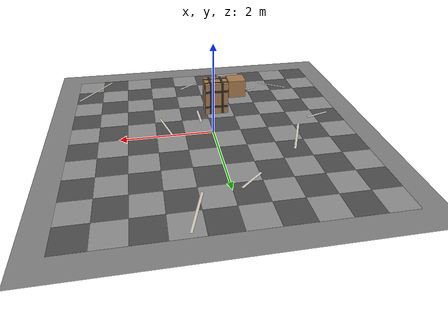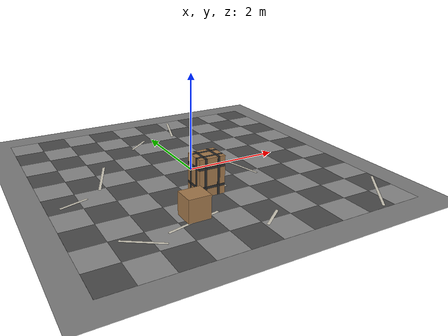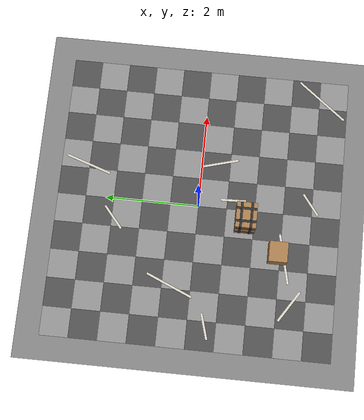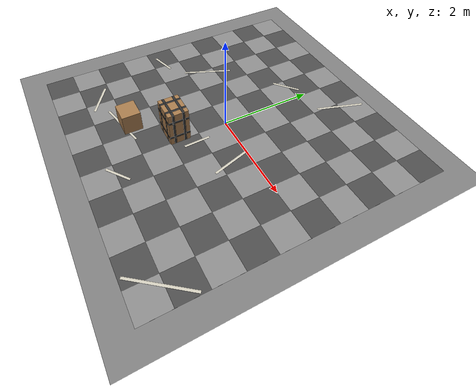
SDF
<sdf version="1.9">
 <world name="ecps295_lowbox_s19">
  <model name="ground_plane">
   <static>true</static>
   <link name="link">
    <collision name="collision">
     <geometry><plane><normal>0 0 1</normal><size>50 50</size></plane></geometry>
    </collision>
    <visual name="visual">
     <geometry><plane><normal>0 0 1</normal><size>50 50</size></plane></geometry>
     <material><ambient>0.5 0.5 0.5 1</ambient><diffuse>0.5 0.5 0.5 1</diffuse></material>
    </visual>
   </link>
  </model>
  <model name="eva_mat">
   <static>true</static>
   <link name="link">
    <visual name="t0_0">
     <pose>-2.745 -2.745 0.001 0 0 0</pose>
     <geometry><box><size>0.61 0.61 0.002</size></box></geometry>
     <material><ambient>0.3 0.3 0.3 1</ambient><diffuse>0.3 0.3 0.3 1</diffuse></material>
    </visual>
    <visual name="t0_1">
     <pose>-2.745 -2.135 0.001 0 0 0</pose>
     <geometry><box><size>0.61 0.61 0.002</size></box></geometry>
     <material><ambient>0.55 0.55 0.55 1</ambient><diffuse>0.55 0.55 0.55 1</diffuse></material>
    </visual>
    <visual name="t0_2">
     <pose>-2.745 -1.525 0.001 0 0 0</pose>
     <geometry><box><size>0.61 0.61 0.002</size></box></geometry>
     <material><ambient>0.3 0.3 0.3 1</ambient><diffuse>0.3 0.3 0.3 1</diffuse></material>
    </visual>
    <visual name="t0_3">
     <pose>-2.745 -0.915 0.001 0 0 0</pose>
     <geometry><box><size>0.61 0.61 0.002</size></box></geometry>
     <material><ambient>0.55 0.55 0.55 1</ambient><diffuse>0.55 0.55 0.55 1</diffuse></material>
    </visual>
    <visual name="t0_4">
     <pose>-2.745 -0.305 0.001 0 0 0</pose>
     <geometry><box><size>0.61 0.61 0.002</size></box></geometry>
     <material><ambient>0.3 0.3 0.3 1</ambient><diffuse>0.3 0.3 0.3 1</diffuse></material>
    </visual>
    <visual name="t0_5">
     <pose>-2.745 0.305 0.001 0 0 0</pose>
     <geometry><box><size>0.61 0.61 0.002</size></box></geometry>
     <material><ambient>0.55 0.55 0.55 1</ambient><diffuse>0.55 0.55 0.55 1</diffuse></material>
    </visual>
    <visual name="t0_6">
     <pose>-2.745 0.915 0.001 0 0 0</pose>
     <geometry><box><size>0.61 0.61 0.002</size></box></geometry>
     <material><ambient>0.3 0.3 0.3 1</ambient><diffuse>0.3 0.3 0.3 1</diffuse></material>
    </visual>
    <visual name="t0_7">
     <pose>-2.745 1.525 0.001 0 0 0</pose>
     <geometry><box><size>0.61 0.61 0.002</size></box></geometry>
     <material><ambient>0.55 0.55 0.55 1</ambient><diffuse>0.55 0.55 0.55 1</diffuse></material>
    </visual>
    <visual name="t0_8">
     <pose>-2.745 2.135 0.001 0 0 0</pose>
     <geometry><box><size>0.61 0.61 0.002</size></box></geometry>
     <material><ambient>0.3 0.3 0.3 1</ambient><diffuse>0.3 0.3 0.3 1</diffuse></material>
    </visual>
    <visual name="t0_9">
     <pose>-2.745 2.745 0.001 0 0 0</pose>
     <geometry><box><size>0.61 0.61 0.002</size></box></geometry>
     <material><ambient>0.55 0.55 0.55 1</ambient><diffuse>0.55 0.55 0.55 1</diffuse></material>
    </visual>
    <visual name="t1_0">
     <pose>-2.135 -2.745 0.001 0 0 0</pose>
     <geometry><box><size>0.61 0.61 0.002</size></box></geometry>
     <material><ambient>0.55 0.55 0.55 1</ambient><diffuse>0.55 0.55 0.55 1</diffuse></material>
    </visual>
    <visual name="t1_1">
     <pose>-2.135 -2.135 0.001 0 0 0</pose>
     <geometry><box><size>0.61 0.61 0.002</size></box></geometry>
     <material><ambient>0.3 0.3 0.3 1</ambient><diffuse>0.3 0.3 0.3 1</diffuse></material>
    </visual>
    <visual name="t1_2">
     <pose>-2.135 -1.525 0.001 0 0 0</pose>
     <geometry><box><size>0.61 0.61 0.002</size></box></geometry>
     <material><ambient>0.55 0.55 0.55 1</ambient><diffuse>0.55 0.55 0.55 1</diffuse></material>
    </visual>
    <visual name="t1_3">
     <pose>-2.135 -0.915 0.001 0 0 0</pose>
     <geometry><box><size>0.61 0.61 0.002</size></box></geometry>
     <material><ambient>0.3 0.3 0.3 1</ambient><diffuse>0.3 0.3 0.3 1</diffuse></material>
    </visual>
    <visual name="t1_4">
     <pose>-2.135 -0.305 0.001 0 0 0</pose>
     <geometry><box><size>0.61 0.61 0.002</size></box></geometry>
     <material><ambient>0.55 0.55 0.55 1</ambient><diffuse>0.55 0.55 0.55 1</diffuse></material>
    </visual>
    <visual name="t1_5">
     <pose>-2.135 0.305 0.001 0 0 0</pose>
     <geometry><box><size>0.61 0.61 0.002</size></box></geometry>
     <material><ambient>0.3 0.3 0.3 1</ambient><diffuse>0.3 0.3 0.3 1</diffuse></material>
    </visual>
    <visual name="t1_6">
     <pose>-2.135 0.915 0.001 0 0 0</pose>
     <geometry><box><size>0.61 0.61 0.002</size></box></geometry>
     <material><ambient>0.55 0.55 0.55 1</ambient><diffuse>0.55 0.55 0.55 1</diffuse></material>
    </visual>
    <visual name="t1_7">
     <pose>-2.135 1.525 0.001 0 0 0</pose>
     <geometry><box><size>0.61 0.61 0.002</size></box></geometry>
     <material><ambient>0.3 0.3 0.3 1</ambient><diffuse>0.3 0.3 0.3 1</diffuse></material>
    </visual>
    <visual name="t1_8">
     <pose>-2.135 2.135 0.001 0 0 0</pose>
     <geometry><box><size>0.61 0.61 0.002</size></box></geometry>
     <material><ambient>0.55 0.55 0.55 1</ambient><diffuse>0.55 0.55 0.55 1</diffuse></material>
    </visual>
    <visual name="t1_9">
     <pose>-2.135 2.745 0.001 0 0 0</pose>
     <geometry><box><size>0.61 0.61 0.002</size></box></geometry>
     <material><ambient>0.3 0.3 0.3 1</ambient><diffuse>0.3 0.3 0.3 1</diffuse></material>
    </visual>
    <visual name="t2_0">
     <pose>-1.525 -2.745 0.001 0 0 0</pose>
     <geometry><box><size>0.61 0.61 0.002</size></box></geometry>
     <material><ambient>0.3 0.3 0.3 1</ambient><diffuse>0.3 0.3 0.3 1</diffuse></material>
    </visual>
    <visual name="t2_1">
     <pose>-1.525 -2.135 0.001 0 0 0</pose>
     <geometry><box><size>0.61 0.61 0.002</size></box></geometry>
     <material><ambient>0.55 0.55 0.55 1</ambient><diffuse>0.55 0.55 0.55 1</diffuse></material>
    </visual>
    <visual name="t2_2">
     <pose>-1.525 -1.525 0.001 0 0 0</pose>
     <geometry><box><size>0.61 0.61 0.002</size></box></geometry>
     <material><ambient>0.3 0.3 0.3 1</ambient><diffuse>0.3 0.3 0.3 1</diffuse></material>
    </visual>
    <visual name="t2_3">
     <pose>-1.525 -0.915 0.001 0 0 0</pose>
     <geometry><box><size>0.61 0.61 0.002</size></box></geometry>
     <material><ambient>0.55 0.55 0.55 1</ambient><diffuse>0.55 0.55 0.55 1</diffuse></material>
    </visual>
    <visual name="t2_4">
     <pose>-1.525 -0.305 0.001 0 0 0</pose>
     <geometry><box><size>0.61 0.61 0.002</size></box></geometry>
     <material><ambient>0.3 0.3 0.3 1</ambient><diffuse>0.3 0.3 0.3 1</diffuse></material>
    </visual>
    <visual name="t2_5">
     <pose>-1.525 0.305 0.001 0 0 0</pose>
     <geometry><box><size>0.61 0.61 0.002</size></box></geometry>
     <material><ambient>0.55 0.55 0.55 1</ambient><diffuse>0.55 0.55 0.55 1</diffuse></material>
    </visual>
    <visual name="t2_6">
     <pose>-1.525 0.915 0.001 0 0 0</pose>
     <geometry><box><size>0.61 0.61 0.002</size></box></geometry>
     <material><ambient>0.3 0.3 0.3 1</ambient><diffuse>0.3 0.3 0.3 1</diffuse></material>
    </visual>
    <visual name="t2_7">
     <pose>-1.525 1.525 0.001 0 0 0</pose>
     <geometry><box><size>0.61 0.61 0.002</size></box></geometry>
     <material><ambient>0.55 0.55 0.55 1</ambient><diffuse>0.55 0.55 0.55 1</diffuse></material>
    </visual>
    <visual name="t2_8">
     <pose>-1.525 2.135 0.001 0 0 0</pose>
     <geometry><box><size>0.61 0.61 0.002</size></box></geometry>
     <material><ambient>0.3 0.3 0.3 1</ambient><diffuse>0.3 0.3 0.3 1</diffuse></material>
    </visual>
    <visual name="t2_9">
     <pose>-1.525 2.745 0.001 0 0 0</pose>
     <geometry><box><size>0.61 0.61 0.002</size></box></geometry>
     <material><ambient>0.55 0.55 0.55 1</ambient><diffuse>0.55 0.55 0.55 1</diffuse></material>
    </visual>
    <visual name="t3_0">
     <pose>-0.915 -2.745 0.001 0 0 0</pose>
     <geometry><box><size>0.61 0.61 0.002</size></box></geometry>
     <material><ambient>0.55 0.55 0.55 1</ambient><diffuse>0.55 0.55 0.55 1</diffuse></material>
    </visual>
    <visual name="t3_1">
     <pose>-0.915 -2.135 0.001 0 0 0</pose>
     <geometry><box><size>0.61 0.61 0.002</size></box></geometry>
     <material><ambient>0.3 0.3 0.3 1</ambient><diffuse>0.3 0.3 0.3 1</diffuse></material>
    </visual>
    <visual name="t3_2">
     <pose>-0.915 -1.525 0.001 0 0 0</pose>
     <geometry><box><size>0.61 0.61 0.002</size></box></geometry>
     <material><ambient>0.55 0.55 0.55 1</ambient><diffuse>0.55 0.55 0.55 1</diffuse></material>
    </visual>
    <visual name="t3_3">
     <pose>-0.915 -0.915 0.001 0 0 0</pose>
     <geometry><box><size>0.61 0.61 0.002</size></box></geometry>
     <material><ambient>0.3 0.3 0.3 1</ambient><diffuse>0.3 0.3 0.3 1</diffuse></material>
    </visual>
    <visual name="t3_4">
     <pose>-0.915 -0.305 0.001 0 0 0</pose>
     <geometry><box><size>0.61 0.61 0.002</size></box></geometry>
     <material><ambient>0.55 0.55 0.55 1</ambient><diffuse>0.55 0.55 0.55 1</diffuse></material>
    </visual>
    <visual name="t3_5">
     <pose>-0.915 0.305 0.001 0 0 0</pose>
     <geometry><box><size>0.61 0.61 0.002</size></box></geometry>
     <material><ambient>0.3 0.3 0.3 1</ambient><diffuse>0.3 0.3 0.3 1</diffuse></material>
    </visual>
    <visual name="t3_6">
     <pose>-0.915 0.915 0.001 0 0 0</pose>
     <geometry><box><size>0.61 0.61 0.002</size></box></geometry>
     <material><ambient>0.55 0.55 0.55 1</ambient><diffuse>0.55 0.55 0.55 1</diffuse></material>
    </visual>
    <visual name="t3_7">
     <pose>-0.915 1.525 0.001 0 0 0</pose>
     <geometry><box><size>0.61 0.61 0.002</size></box></geometry>
     <material><ambient>0.3 0.3 0.3 1</ambient><diffuse>0.3 0.3 0.3 1</diffuse></material>
    </visual>
    <visual name="t3_8">
     <pose>-0.915 2.135 0.001 0 0 0</pose>
     <geometry><box><size>0.61 0.61 0.002</size></box></geometry>
     <material><ambient>0.55 0.55 0.55 1</ambient><diffuse>0.55 0.55 0.55 1</diffuse></material>
    </visual>
    <visual name="t3_9">
     <pose>-0.915 2.745 0.001 0 0 0</pose>
     <geometry><box><size>0.61 0.61 0.002</size></box></geometry>
     <material><ambient>0.3 0.3 0.3 1</ambient><diffuse>0.3 0.3 0.3 1</diffuse></material>
    </visual>
    <visual name="t4_0">
     <pose>-0.305 -2.745 0.001 0 0 0</pose>
     <geometry><box><size>0.61 0.61 0.002</size></box></geometry>
     <material><ambient>0.3 0.3 0.3 1</ambient><diffuse>0.3 0.3 0.3 1</diffuse></material>
    </visual>
    <visual name="t4_1">
     <pose>-0.305 -2.135 0.001 0 0 0</pose>
     <geometry><box><size>0.61 0.61 0.002</size></box></geometry>
     <material><ambient>0.55 0.55 0.55 1</ambient><diffuse>0.55 0.55 0.55 1</diffuse></material>
    </visual>
    <visual name="t4_2">
     <pose>-0.305 -1.525 0.001 0 0 0</pose>
     <geometry><box><size>0.61 0.61 0.002</size></box></geometry>
     <material><ambient>0.3 0.3 0.3 1</ambient><diffuse>0.3 0.3 0.3 1</diffuse></material>
    </visual>
    <visual name="t4_3">
     <pose>-0.305 -0.915 0.001 0 0 0</pose>
     <geometry><box><size>0.61 0.61 0.002</size></box></geometry>
     <material><ambient>0.55 0.55 0.55 1</ambient><diffuse>0.55 0.55 0.55 1</diffuse></material>
    </visual>
    <visual name="t4_4">
     <pose>-0.305 -0.305 0.001 0 0 0</pose>
     <geometry><box><size>0.61 0.61 0.002</size></box></geometry>
     <material><ambient>0.3 0.3 0.3 1</ambient><diffuse>0.3 0.3 0.3 1</diffuse></material>
    </visual>
    <visual name="t4_5">
     <pose>-0.305 0.305 0.001 0 0 0</pose>
     <geometry><box><size>0.61 0.61 0.002</size></box></geometry>
     <material><ambient>0.55 0.55 0.55 1</ambient><diffuse>0.55 0.55 0.55 1</diffuse></material>
    </visual>
    <visual name="t4_6">
     <pose>-0.305 0.915 0.001 0 0 0</pose>
     <geometry><box><size>0.61 0.61 0.002</size></box></geometry>
     <material><ambient>0.3 0.3 0.3 1</ambient><diffuse>0.3 0.3 0.3 1</diffuse></material>
    </visual>
    <visual name="t4_7">
     <pose>-0.305 1.525 0.001 0 0 0</pose>
     <geometry><box><size>0.61 0.61 0.002</size></box></geometry>
     <material><ambient>0.55 0.55 0.55 1</ambient><diffuse>0.55 0.55 0.55 1</diffuse></material>
    </visual>
    <visual name="t4_8">
     <pose>-0.305 2.135 0.001 0 0 0</pose>
     <geometry><box><size>0.61 0.61 0.002</size></box></geometry>
     <material><ambient>0.3 0.3 0.3 1</ambient><diffuse>0.3 0.3 0.3 1</diffuse></material>
    </visual>
    <visual name="t4_9">
     <pose>-0.305 2.745 0.001 0 0 0</pose>
     <geometry><box><size>0.61 0.61 0.002</size></box></geometry>
     <material><ambient>0.55 0.55 0.55 1</ambient><diffuse>0.55 0.55 0.55 1</diffuse></material>
    </visual>
    <visual name="t5_0">
     <pose>0.305 -2.745 0.001 0 0 0</pose>
     <geometry><box><size>0.61 0.61 0.002</size></box></geometry>
     <material><ambient>0.55 0.55 0.55 1</ambient><diffuse>0.55 0.55 0.55 1</diffuse></material>
    </visual>
    <visual name="t5_1">
     <pose>0.305 -2.135 0.001 0 0 0</pose>
     <geometry><box><size>0.61 0.61 0.002</size></box></geometry>
     <material><ambient>0.3 0.3 0.3 1</ambient><diffuse>0.3 0.3 0.3 1</diffuse></material>
    </visual>
    <visual name="t5_2">
     <pose>0.305 -1.525 0.001 0 0 0</pose>
     <geometry><box><size>0.61 0.61 0.002</size></box></geometry>
     <material><ambient>0.55 0.55 0.55 1</ambient><diffuse>0.55 0.55 0.55 1</diffuse></material>
    </visual>
    <visual name="t5_3">
     <pose>0.305 -0.915 0.001 0 0 0</pose>
     <geometry><box><size>0.61 0.61 0.002</size></box></geometry>
     <material><ambient>0.3 0.3 0.3 1</ambient><diffuse>0.3 0.3 0.3 1</diffuse></material>
    </visual>
    <visual name="t5_4">
     <pose>0.305 -0.305 0.001 0 0 0</pose>
     <geometry><box><size>0.61 0.61 0.002</size></box></geometry>
     <material><ambient>0.55 0.55 0.55 1</ambient><diffuse>0.55 0.55 0.55 1</diffuse></material>
    </visual>
    <visual name="t5_5">
     <pose>0.305 0.305 0.001 0 0 0</pose>
     <geometry><box><size>0.61 0.61 0.002</size></box></geometry>
     <material><ambient>0.3 0.3 0.3 1</ambient><diffuse>0.3 0.3 0.3 1</diffuse></material>
    </visual>
    <visual name="t5_6">
     <pose>0.305 0.915 0.001 0 0 0</pose>
     <geometry><box><size>0.61 0.61 0.002</size></box></geometry>
     <material><ambient>0.55 0.55 0.55 1</ambient><diffuse>0.55 0.55 0.55 1</diffuse></material>
    </visual>
    <visual name="t5_7">
     <pose>0.305 1.525 0.001 0 0 0</pose>
     <geometry><box><size>0.61 0.61 0.002</size></box></geometry>
     <material><ambient>0.3 0.3 0.3 1</ambient><diffuse>0.3 0.3 0.3 1</diffuse></material>
    </visual>
    <visual name="t5_8">
     <pose>0.305 2.135 0.001 0 0 0</pose>
     <geometry><box><size>0.61 0.61 0.002</size></box></geometry>
     <material><ambient>0.55 0.55 0.55 1</ambient><diffuse>0.55 0.55 0.55 1</diffuse></material>
    </visual>
    <visual name="t5_9">
     <pose>0.305 2.745 0.001 0 0 0</pose>
     <geometry><box><size>0.61 0.61 0.002</size></box></geometry>
     <material><ambient>0.3 0.3 0.3 1</ambient><diffuse>0.3 0.3 0.3 1</diffuse></material>
    </visual>
    <visual name="t6_0">
     <pose>0.915 -2.745 0.001 0 0 0</pose>
     <geometry><box><size>0.61 0.61 0.002</size></box></geometry>
     <material><ambient>0.3 0.3 0.3 1</ambient><diffuse>0.3 0.3 0.3 1</diffuse></material>
    </visual>
    <visual name="t6_1">
     <pose>0.915 -2.135 0.001 0 0 0</pose>
     <geometry><box><size>0.61 0.61 0.002</size></box></geometry>
     <material><ambient>0.55 0.55 0.55 1</ambient><diffuse>0.55 0.55 0.55 1</diffuse></material>
    </visual>
    <visual name="t6_2">
     <pose>0.915 -1.525 0.001 0 0 0</pose>
     <geometry><box><size>0.61 0.61 0.002</size></box></geometry>
     <material><ambient>0.3 0.3 0.3 1</ambient><diffuse>0.3 0.3 0.3 1</diffuse></material>
    </visual>
    <visual name="t6_3">
     <pose>0.915 -0.915 0.001 0 0 0</pose>
     <geometry><box><size>0.61 0.61 0.002</size></box></geometry>
     <material><ambient>0.55 0.55 0.55 1</ambient><diffuse>0.55 0.55 0.55 1</diffuse></material>
    </visual>
    <visual name="t6_4">
     <pose>0.915 -0.305 0.001 0 0 0</pose>
     <geometry><box><size>0.61 0.61 0.002</size></box></geometry>
     <material><ambient>0.3 0.3 0.3 1</ambient><diffuse>0.3 0.3 0.3 1</diffuse></material>
    </visual>
    <visual name="t6_5">
     <pose>0.915 0.305 0.001 0 0 0</pose>
     <geometry><box><size>0.61 0.61 0.002</size></box></geometry>
     <material><ambient>0.55 0.55 0.55 1</ambient><diffuse>0.55 0.55 0.55 1</diffuse></material>
    </visual>
    <visual name="t6_6">
     <pose>0.915 0.915 0.001 0 0 0</pose>
     <geometry><box><size>0.61 0.61 0.002</size></box></geometry>
     <material><ambient>0.3 0.3 0.3 1</ambient><diffuse>0.3 0.3 0.3 1</diffuse></material>
    </visual>
    <visual name="t6_7">
     <pose>0.915 1.525 0.001 0 0 0</pose>
     <geometry><box><size>0.61 0.61 0.002</size></box></geometry>
     <material><ambient>0.55 0.55 0.55 1</ambient><diffuse>0.55 0.55 0.55 1</diffuse></material>
    </visual>
    <visual name="t6_8">
     <pose>0.915 2.135 0.001 0 0 0</pose>
     <geometry><box><size>0.61 0.61 0.002</size></box></geometry>
     <material><ambient>0.3 0.3 0.3 1</ambient><diffuse>0.3 0.3 0.3 1</diffuse></material>
    </visual>
    <visual name="t6_9">
     <pose>0.915 2.745 0.001 0 0 0</pose>
     <geometry><box><size>0.61 0.61 0.002</size></box></geometry>
     <material><ambient>0.55 0.55 0.55 1</ambient><diffuse>0.55 0.55 0.55 1</diffuse></material>
    </visual>
    <visual name="t7_0">
     <pose>1.525 -2.745 0.001 0 0 0</pose>
     <geometry><box><size>0.61 0.61 0.002</size></box></geometry>
     <material><ambient>0.55 0.55 0.55 1</ambient><diffuse>0.55 0.55 0.55 1</diffuse></material>
    </visual>
    <visual name="t7_1">
     <pose>1.525 -2.135 0.001 0 0 0</pose>
     <geometry><box><size>0.61 0.61 0.002</size></box></geometry>
     <material><ambient>0.3 0.3 0.3 1</ambient><diffuse>0.3 0.3 0.3 1</diffuse></material>
    </visual>
    <visual name="t7_2">
     <pose>1.525 -1.525 0.001 0 0 0</pose>
     <geometry><box><size>0.61 0.61 0.002</size></box></geometry>
     <material><ambient>0.55 0.55 0.55 1</ambient><diffuse>0.55 0.55 0.55 1</diffuse></material>
    </visual>
    <visual name="t7_3">
     <pose>1.525 -0.915 0.001 0 0 0</pose>
     <geometry><box><size>0.61 0.61 0.002</size></box></geometry>
     <material><ambient>0.3 0.3 0.3 1</ambient><diffuse>0.3 0.3 0.3 1</diffuse></material>
    </visual>
    <visual name="t7_4">
     <pose>1.525 -0.305 0.001 0 0 0</pose>
     <geometry><box><size>0.61 0.61 0.002</size></box></geometry>
     <material><ambient>0.55 0.55 0.55 1</ambient><diffuse>0.55 0.55 0.55 1</diffuse></material>
    </visual>
    <visual name="t7_5">
     <pose>1.525 0.305 0.001 0 0 0</pose>
     <geometry><box><size>0.61 0.61 0.002</size></box></geometry>
     <material><ambient>0.3 0.3 0.3 1</ambient><diffuse>0.3 0.3 0.3 1</diffuse></material>
    </visual>
    <visual name="t7_6">
     <pose>1.525 0.915 0.001 0 0 0</pose>
     <geometry><box><size>0.61 0.61 0.002</size></box></geometry>
     <material><ambient>0.55 0.55 0.55 1</ambient><diffuse>0.55 0.55 0.55 1</diffuse></material>
    </visual>
    <visual name="t7_7">
     <pose>1.525 1.525 0.001 0 0 0</pose>
     <geometry><box><size>0.61 0.61 0.002</size></box></geometry>
     <material><ambient>0.3 0.3 0.3 1</ambient><diffuse>0.3 0.3 0.3 1</diffuse></material>
    </visual>
    <visual name="t7_8">
     <pose>1.525 2.135 0.001 0 0 0</pose>
     <geometry><box><size>0.61 0.61 0.002</size></box></geometry>
     <material><ambient>0.55 0.55 0.55 1</ambient><diffuse>0.55 0.55 0.55 1</diffuse></material>
    </visual>
    <visual name="t7_9">
     <pose>1.525 2.745 0.001 0 0 0</pose>
     <geometry><box><size>0.61 0.61 0.002</size></box></geometry>
     <material><ambient>0.3 0.3 0.3 1</ambient><diffuse>0.3 0.3 0.3 1</diffuse></material>
    </visual>
    <visual name="t8_0">
     <pose>2.135 -2.745 0.001 0 0 0</pose>
     <geometry><box><size>0.61 0.61 0.002</size></box></geometry>
     <material><ambient>0.3 0.3 0.3 1</ambient><diffuse>0.3 0.3 0.3 1</diffuse></material>
    </visual>
    <visual name="t8_1">
     <pose>2.135 -2.135 0.001 0 0 0</pose>
     <geometry><box><size>0.61 0.61 0.002</size></box></geometry>
     <material><ambient>0.55 0.55 0.55 1</ambient><diffuse>0.55 0.55 0.55 1</diffuse></material>
    </visual>
    <visual name="t8_2">
     <pose>2.135 -1.525 0.001 0 0 0</pose>
     <geometry><box><size>0.61 0.61 0.002</size></box></geometry>
     <material><ambient>0.3 0.3 0.3 1</ambient><diffuse>0.3 0.3 0.3 1</diffuse></material>
    </visual>
    <visual name="t8_3">
     <pose>2.135 -0.915 0.001 0 0 0</pose>
     <geometry><box><size>0.61 0.61 0.002</size></box></geometry>
     <material><ambient>0.55 0.55 0.55 1</ambient><diffuse>0.55 0.55 0.55 1</diffuse></material>
    </visual>
    <visual name="t8_4">
     <pose>2.135 -0.305 0.001 0 0 0</pose>
     <geometry><box><size>0.61 0.61 0.002</size></box></geometry>
     <material><ambient>0.3 0.3 0.3 1</ambient><diffuse>0.3 0.3 0.3 1</diffuse></material>
    </visual>
    <visual name="t8_5">
     <pose>2.135 0.305 0.001 0 0 0</pose>
     <geometry><box><size>0.61 0.61 0.002</size></box></geometry>
     <material><ambient>0.55 0.55 0.55 1</ambient><diffuse>0.55 0.55 0.55 1</diffuse></material>
    </visual>
    <visual name="t8_6">
     <pose>2.135 0.915 0.001 0 0 0</pose>
     <geometry><box><size>0.61 0.61 0.002</size></box></geometry>
     <material><ambient>0.3 0.3 0.3 1</ambient><diffuse>0.3 0.3 0.3 1</diffuse></material>
    </visual>
    <visual name="t8_7">
     <pose>2.135 1.525 0.001 0 0 0</pose>
     <geometry><box><size>0.61 0.61 0.002</size></box></geometry>
     <material><ambient>0.55 0.55 0.55 1</ambient><diffuse>0.55 0.55 0.55 1</diffuse></material>
    </visual>
    <visual name="t8_8">
     <pose>2.135 2.135 0.001 0 0 0</pose>
     <geometry><box><size>0.61 0.61 0.002</size></box></geometry>
     <material><ambient>0.3 0.3 0.3 1</ambient><diffuse>0.3 0.3 0.3 1</diffuse></material>
    </visual>
    <visual name="t8_9">
     <pose>2.135 2.745 0.001 0 0 0</pose>
     <geometry><box><size>0.61 0.61 0.002</size></box></geometry>
     <material><ambient>0.55 0.55 0.55 1</ambient><diffuse>0.55 0.55 0.55 1</diffuse></material>
    </visual>
    <visual name="t9_0">
     <pose>2.745 -2.745 0.001 0 0 0</pose>
     <geometry><box><size>0.61 0.61 0.002</size></box></geometry>
     <material><ambient>0.55 0.55 0.55 1</ambient><diffuse>0.55 0.55 0.55 1</diffuse></material>
    </visual>
    <visual name="t9_1">
     <pose>2.745 -2.135 0.001 0 0 0</pose>
     <geometry><box><size>0.61 0.61 0.002</size></box></geometry>
     <material><ambient>0.3 0.3 0.3 1</ambient><diffuse>0.3 0.3 0.3 1</diffuse></material>
    </visual>
    <visual name="t9_2">
     <pose>2.745 -1.525 0.001 0 0 0</pose>
     <geometry><box><size>0.61 0.61 0.002</size></box></geometry>
     <material><ambient>0.55 0.55 0.55 1</ambient><diffuse>0.55 0.55 0.55 1</diffuse></material>
    </visual>
    <visual name="t9_3">
     <pose>2.745 -0.915 0.001 0 0 0</pose>
     <geometry><box><size>0.61 0.61 0.002</size></box></geometry>
     <material><ambient>0.3 0.3 0.3 1</ambient><diffuse>0.3 0.3 0.3 1</diffuse></material>
    </visual>
    <visual name="t9_4">
     <pose>2.745 -0.305 0.001 0 0 0</pose>
     <geometry><box><size>0.61 0.61 0.002</size></box></geometry>
     <material><ambient>0.55 0.55 0.55 1</ambient><diffuse>0.55 0.55 0.55 1</diffuse></material>
    </visual>
    <visual name="t9_5">
     <pose>2.745 0.305 0.001 0 0 0</pose>
     <geometry><box><size>0.61 0.61 0.002</size></box></geometry>
     <material><ambient>0.3 0.3 0.3 1</ambient><diffuse>0.3 0.3 0.3 1</diffuse></material>
    </visual>
    <visual name="t9_6">
     <pose>2.745 0.915 0.001 0 0 0</pose>
     <geometry><box><size>0.61 0.61 0.002</size></box></geometry>
     <material><ambient>0.55 0.55 0.55 1</ambient><diffuse>0.55 0.55 0.55 1</diffuse></material>
    </visual>
    <visual name="t9_7">
     <pose>2.745 1.525 0.001 0 0 0</pose>
     <geometry><box><size>0.61 0.61 0.002</size></box></geometry>
     <material><ambient>0.3 0.3 0.3 1</ambient><diffuse>0.3 0.3 0.3 1</diffuse></material>
    </visual>
    <visual name="t9_8">
     <pose>2.745 2.135 0.001 0 0 0</pose>
     <geometry><box><size>0.61 0.61 0.002</size></box></geometry>
     <material><ambient>0.55 0.55 0.55 1</ambient><diffuse>0.55 0.55 0.55 1</diffuse></material>
    </visual>
    <visual name="t9_9">
     <pose>2.745 2.745 0.001 0 0 0</pose>
     <geometry><box><size>0.61 0.61 0.002</size></box></geometry>
     <material><ambient>0.3 0.3 0.3 1</ambient><diffuse>0.3 0.3 0.3 1</diffuse></material>
    </visual>
   </link>
  </model>
  <model name="floor_tape">
   <static>true</static>
   <link name="link">
    <visual name="tape0">
     <pose>-0.969 -1.920 0.003 0 0 0.2276</pose>
     <geometry><box><size>1.086 0.050 0.001</size></box></geometry>
     <material><ambient>0.82 0.80 0.74 1</ambient><diffuse>0.82 0.80 0.74 1</diffuse></material>
    </visual>
    <visual name="tape1">
     <pose>0.197 -0.739 0.003 0 0 1.5942</pose>
     <geometry><box><size>0.552 0.050 0.001</size></box></geometry>
     <material><ambient>0.82 0.80 0.74 1</ambient><diffuse>0.82 0.80 0.74 1</diffuse></material>
    </visual>
    <visual name="tape2">
     <pose>-2.544 -0.365 0.003 0 0 0.2850</pose>
     <geometry><box><size>0.563 0.050 0.001</size></box></geometry>
     <material><ambient>0.82 0.80 0.74 1</ambient><diffuse>0.82 0.80 0.74 1</diffuse></material>
    </visual>
    <visual name="tape3">
     <pose>-0.415 1.798 0.003 0 0 0.7013</pose>
     <geometry><box><size>0.611 0.050 0.001</size></box></geometry>
     <material><ambient>0.82 0.80 0.74 1</ambient><diffuse>0.82 0.80 0.74 1</diffuse></material>
    </visual>
    <visual name="tape4">
     <pose>0.701 2.462 0.003 0 0 1.2462</pose>
     <geometry><box><size>1.019 0.050 0.001</size></box></geometry>
     <material><ambient>0.82 0.80 0.74 1</ambient><diffuse>0.82 0.80 0.74 1</diffuse></material>
    </visual>
    <visual name="tape5">
     <pose>2.619 -2.494 0.003 0 0 0.9098</pose>
     <geometry><box><size>1.273 0.050 0.001</size></box></geometry>
     <material><ambient>0.82 0.80 0.74 1</ambient><diffuse>0.82 0.80 0.74 1</diffuse></material>
    </visual>
    <visual name="tape6">
     <pose>-1.957 -2.102 0.003 0 0 2.5639</pose>
     <geometry><box><size>0.778 0.050 0.001</size></box></geometry>
     <material><ambient>0.82 0.80 0.74 1</ambient><diffuse>0.82 0.80 0.74 1</diffuse></material>
    </visual>
    <visual name="tape7">
     <pose>-1.756 0.449 0.003 0 0 1.1699</pose>
     <geometry><box><size>1.075 0.050 0.001</size></box></geometry>
     <material><ambient>0.82 0.80 0.74 1</ambient><diffuse>0.82 0.80 0.74 1</diffuse></material>
    </visual>
    <visual name="tape8">
     <pose>0.263 -2.405 0.003 0 0 0.6470</pose>
     <geometry><box><size>0.554 0.050 0.001</size></box></geometry>
     <material><ambient>0.82 0.80 0.74 1</ambient><diffuse>0.82 0.80 0.74 1</diffuse></material>
    </visual>
    <visual name="tape9">
     <pose>0.992 -0.398 0.003 0 0 1.8396</pose>
     <geometry><box><size>0.783 0.050 0.001</size></box></geometry>
     <material><ambient>0.82 0.80 0.74 1</ambient><diffuse>0.82 0.80 0.74 1</diffuse></material>
    </visual>
   </link>
  </model>
  <model name="lb0">
   <static>true</static>
   <pose>-0.23 -1.02 0.373 0 0 0</pose>
   <link name="link">
    <collision name="c"><geometry><box><size>0.53 0.43 0.75</size></box></geometry></collision>
    <visual name="v">
     <geometry><box><size>0.53 0.43 0.75</size></box></geometry>
     <material><ambient>0.65 0.48 0.30 1</ambient><diffuse>0.65 0.48 0.30 1</diffuse></material>
    </visual>
    <visual name="tape_ring0">
     <pose>0.000 0.000 -0.188 0 0 0</pose>
     <geometry><box><size>0.534 0.434 0.050</size></box></geometry>
     <material><ambient>0.18 0.18 0.18 1</ambient><diffuse>0.18 0.18 0.18 1</diffuse></material>
    </visual>
    <visual name="tape_bx0">
     <pose>-0.133 0.000 0.000 0 0 0</pose>
     <geometry><box><size>0.050 0.434 0.754</size></box></geometry>
     <material><ambient>0.18 0.18 0.18 1</ambient><diffuse>0.18 0.18 0.18 1</diffuse></material>
    </visual>
    <visual name="tape_by0">
     <pose>0.000 -0.107 0.000 0 0 0</pose>
     <geometry><box><size>0.534 0.050 0.754</size></box></geometry>
     <material><ambient>0.18 0.18 0.18 1</ambient><diffuse>0.18 0.18 0.18 1</diffuse></material>
    </visual>
    <visual name="tape_ring1">
     <pose>0.000 0.000 0.188 0 0 0</pose>
     <geometry><box><size>0.534 0.434 0.050</size></box></geometry>
     <material><ambient>0.18 0.18 0.18 1</ambient><diffuse>0.18 0.18 0.18 1</diffuse></material>
    </visual>
    <visual name="tape_bx1">
     <pose>0.133 0.000 0.000 0 0 0</pose>
     <geometry><box><size>0.050 0.434 0.754</size></box></geometry>
     <material><ambient>0.18 0.18 0.18 1</ambient><diffuse>0.18 0.18 0.18 1</diffuse></material>
    </visual>
    <visual name="tape_by1">
     <pose>0.000 0.107 0.000 0 0 0</pose>
     <geometry><box><size>0.534 0.050 0.754</size></box></geometry>
     <material><ambient>0.18 0.18 0.18 1</ambient><diffuse>0.18 0.18 0.18 1</diffuse></material>
    </visual>
   </link>
  </model>
  <model name="lb5">
   <static>true</static>
   <pose>-0.88 -1.76 0.221 0 0 0</pose>
   <link name="link">
    <collision name="c"><geometry><box><size>0.43 0.39 0.44</size></box></geometry></collision>
    <visual name="v">
     <geometry><box><size>0.43 0.39 0.44</size></box></geometry>
     <material><ambient>0.65 0.48 0.30 1</ambient><diffuse>0.65 0.48 0.30 1</diffuse></material>
    </visual>
   </link>
  </model>
 </world>
</sdf>
